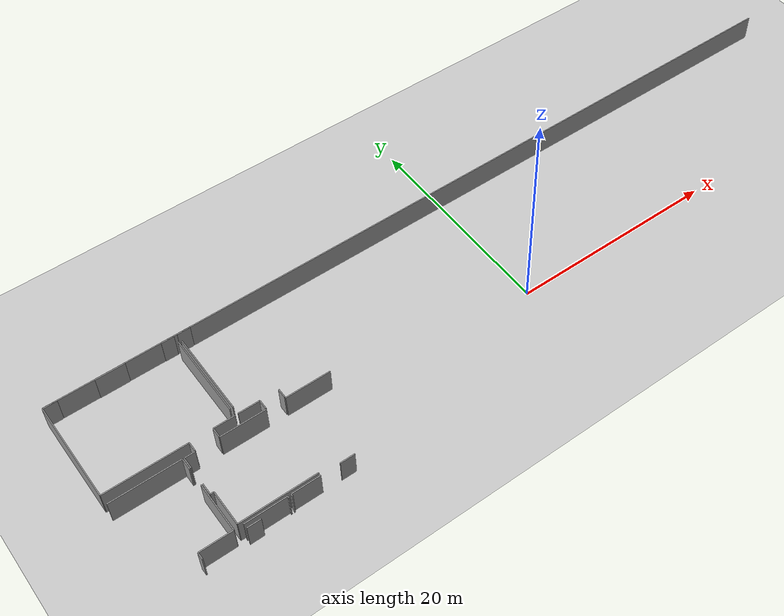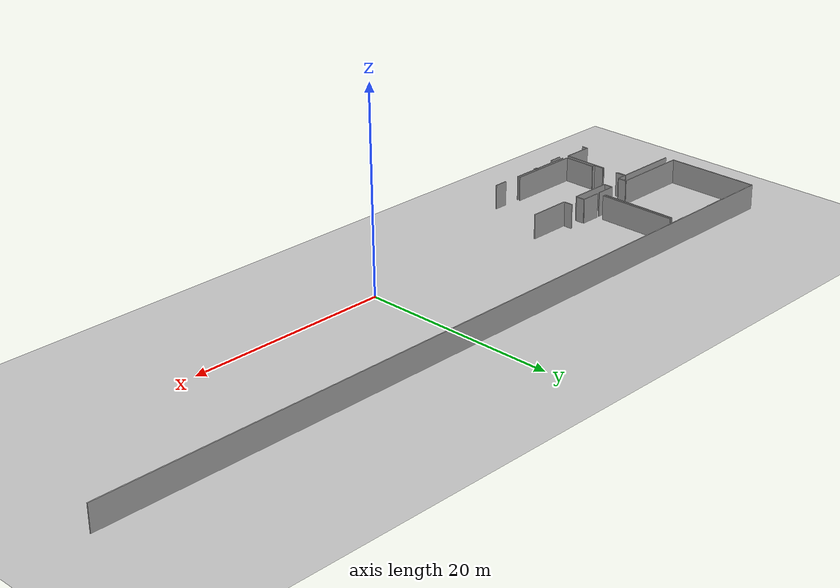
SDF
<sdf version="1.6">
 <world name="default">
  <model name="ground_plane">
   <static>1</static>
   <link name="link">
    <collision name="collision">
     <geometry><plane><normal>0 0 1</normal><size>100 100</size></plane></geometry>
     <surface><friction><ode><mu>100</mu><mu2>50</mu2></ode></friction></surface>
    </collision>
    <visual name="visual">
     <cast_shadows>0</cast_shadows>
     <geometry><plane><normal>0 0 1</normal><size>100 100</size></plane></geometry>
     <material>
      <script><uri>file://media/materials/scripts/gazebo.material</uri><name>Gazebo/Grey</name></script>
     </material>
    </visual>
   </link>
  </model>
  <model name="50052753">
   <static>1</static>
   <link name="Wall_0">
    <collision name="Wall_0_Collision">
     <geometry><box><size>7.63324305639 0.1 2.5</size></box></geometry>
     <pose>3.8166215282 0 1.25 0 0 0</pose>
    </collision>
    <visual name="Wall_0_Visual">
     <pose>3.8166215282 0 1.25 0 0 0</pose>
     <geometry><box><size>7.63324305639 0.1 2.5</size></box></geometry>
     <material>
      <script><uri>file://media/materials/scripts/gazebo.material</uri><name>Gazebo/Grey</name></script>
      <ambient>1 1 1 1</ambient>
     </material>
    </visual>
    <pose>0.0230872176731 -9.6408161712 0 0 0 0.0</pose>
   </link>
   <link name="Wall_1">
    <collision name="Wall_1_Collision">
     <geometry><box><size>0.879851328466 0.1 2.5</size></box></geometry>
     <pose>0.439925664233 0 1.25 0 0 0</pose>
    </collision>
    <visual name="Wall_1_Visual">
     <pose>0.439925664233 0 1.25 0 0 0</pose>
     <geometry><box><size>0.879851328466 0.1 2.5</size></box></geometry>
     <material>
      <script><uri>file://media/materials/scripts/gazebo.material</uri><name>Gazebo/Grey</name></script>
      <ambient>1 1 1 1</ambient>
     </material>
    </visual>
    <pose>7.65633027407 -9.6408161712 0 0 0 -1.57079632679</pose>
   </link>
   <link name="Wall_2">
    <collision name="Wall_2_Collision">
     <geometry><box><size>0.892536612902 0.1 2.5</size></box></geometry>
     <pose>0.446268306451 0 1.25 0 0 0</pose>
    </collision>
    <visual name="Wall_2_Visual">
     <pose>0.446268306451 0 1.25 0 0 0</pose>
     <geometry><box><size>0.892536612902 0.1 2.5</size></box></geometry>
     <material>
      <script><uri>file://media/materials/scripts/gazebo.material</uri><name>Gazebo/Grey</name></script>
      <ambient>1 1 1 1</ambient>
     </material>
    </visual>
    <pose>9.79075623323 -10.5206674997 0 0 0 1.57079632679</pose>
   </link>
   <link name="Wall_3">
    <collision name="Wall_3_Collision">
     <geometry><box><size>1.97040523141 0.1 2.5</size></box></geometry>
     <pose>0.985202615706 0 1.25 0 0 0</pose>
    </collision>
    <visual name="Wall_3_Visual">
     <pose>0.985202615706 0 1.25 0 0 0</pose>
     <geometry><box><size>1.97040523141 0.1 2.5</size></box></geometry>
     <material>
      <script><uri>file://media/materials/scripts/gazebo.material</uri><name>Gazebo/Grey</name></script>
      <ambient>1 1 1 1</ambient>
     </material>
    </visual>
    <pose>9.79075623323 -9.62813088676 0 0 0 0.0</pose>
   </link>
   <link name="Wall_4">
    <collision name="Wall_4_Collision">
     <geometry><box><size>8.11249310238 0.1 2.5</size></box></geometry>
     <pose>4.05624655119 0 1.25 0 0 0</pose>
    </collision>
    <visual name="Wall_4_Visual">
     <pose>4.05624655119 0 1.25 0 0 0</pose>
     <geometry><box><size>8.11249310238 0.1 2.5</size></box></geometry>
     <material>
      <script><uri>file://media/materials/scripts/gazebo.material</uri><name>Gazebo/Grey</name></script>
      <ambient>1 1 1 1</ambient>
     </material>
    </visual>
    <pose>11.7611614646 -8.87576666688 0 0 0 1.57079632679</pose>
   </link>
   <link name="Wall_5">
    <collision name="Wall_5_Collision">
     <geometry><box><size>1.19863252634 0.1 2.5</size></box></geometry>
     <pose>0.599316263169 0 1.25 0 0 0</pose>
    </collision>
    <visual name="Wall_5_Visual">
     <pose>0.599316263169 0 1.25 0 0 0</pose>
     <geometry><box><size>1.19863252634 0.1 2.5</size></box></geometry>
     <material>
      <script><uri>file://media/materials/scripts/gazebo.material</uri><name>Gazebo/Grey</name></script>
      <ambient>1 1 1 1</ambient>
     </material>
    </visual>
    <pose>11.7611614646 -0.0282881842918 0 0 0 3.14159265359</pose>
   </link>
   <link name="Wall_6">
    <collision name="Wall_6_Collision">
     <geometry><box><size>2.71465086926 0.1 2.5</size></box></geometry>
     <pose>1.35732543463 0 1.25 0 0 0</pose>
    </collision>
    <visual name="Wall_6_Visual">
     <pose>1.35732543463 0 1.25 0 0 0</pose>
     <geometry><box><size>2.71465086926 0.1 2.5</size></box></geometry>
     <material>
      <script><uri>file://media/materials/scripts/gazebo.material</uri><name>Gazebo/Grey</name></script>
      <ambient>1 1 1 1</ambient>
     </material>
    </visual>
    <pose>7.27742082797 -0.0282881842918 0 0 0 3.14159265359</pose>
   </link>
   <link name="Wall_7">
    <collision name="Wall_7_Collision">
     <geometry><box><size>1.27778870122 0.1 2.5</size></box></geometry>
     <pose>0.638894350609 0 1.25 0 0 0</pose>
    </collision>
    <visual name="Wall_7_Visual">
     <pose>0.638894350609 0 1.25 0 0 0</pose>
     <geometry><box><size>1.27778870122 0.1 2.5</size></box></geometry>
     <material>
      <script><uri>file://media/materials/scripts/gazebo.material</uri><name>Gazebo/Grey</name></script>
      <ambient>1 1 1 1</ambient>
     </material>
    </visual>
    <pose>1.27778870122 -0.0282881842918 0 0 0 3.14159265359</pose>
   </link>
   <link name="Wall_8">
    <collision name="Wall_8_Collision">
     <geometry><box><size>9.61255571213 0.1 2.5</size></box></geometry>
     <pose>4.80627785606 0 1.25 0 0 0</pose>
    </collision>
    <visual name="Wall_8_Visual">
     <pose>4.80627785606 0 1.25 0 0 0</pose>
     <geometry><box><size>9.61255571213 0.1 2.5</size></box></geometry>
     <material>
      <script><uri>file://media/materials/scripts/gazebo.material</uri><name>Gazebo/Grey</name></script>
      <ambient>1 1 1 1</ambient>
     </material>
    </visual>
    <pose>0.0 -0.0282881842918 0 0 0 -1.56839454723</pose>
   </link>
   <link name="Wall_10">
    <collision name="Wall_10_Collision">
     <geometry><box><size>6.44716896165 0.1 2.5</size></box></geometry>
     <pose>3.22358448082 0 1.25 0 0 0</pose>
    </collision>
    <visual name="Wall_10_Visual">
     <pose>3.22358448082 0 1.25 0 0 0</pose>
     <geometry><box><size>6.44716896165 0.1 2.5</size></box></geometry>
     <material>
      <script><uri>file://media/materials/scripts/gazebo.material</uri><name>Gazebo/Grey</name></script>
      <ambient>1 1 1 1</ambient>
     </material>
    </visual>
    <pose>0.0715450042179 -10.5854893031 0 0 0 0.0</pose>
   </link>
   <link name="Wall_11">
    <collision name="Wall_11_Collision">
     <geometry><box><size>1.07342876896 0.1 2.5</size></box></geometry>
     <pose>0.536714384478 0 1.25 0 0 0</pose>
    </collision>
    <visual name="Wall_11_Visual">
     <pose>0.536714384478 0 1.25 0 0 0</pose>
     <geometry><box><size>1.07342876896 0.1 2.5</size></box></geometry>
     <material>
      <script><uri>file://media/materials/scripts/gazebo.material</uri><name>Gazebo/Grey</name></script>
      <ambient>1 1 1 1</ambient>
     </material>
    </visual>
    <pose>6.51871396586 -10.5854893031 0 0 0 -1.57079632679</pose>
   </link>
   <link name="Wall_12">
    <collision name="Wall_12_Collision">
     <geometry><box><size>4.72006748571 0.1 2.5</size></box></geometry>
     <pose>2.36003374286 0 1.25 0 0 0</pose>
    </collision>
    <visual name="Wall_12_Visual">
     <pose>2.36003374286 0 1.25 0 0 0</pose>
     <geometry><box><size>4.72006748571 0.1 2.5</size></box></geometry>
     <material>
      <script><uri>file://media/materials/scripts/gazebo.material</uri><name>Gazebo/Grey</name></script>
      <ambient>1 1 1 1</ambient>
     </material>
    </visual>
    <pose>6.51871396586 -13.3877954878 0 0 0 -1.57079632679</pose>
   </link>
   <link name="Wall_13">
    <collision name="Wall_13_Collision">
     <geometry><box><size>3.02290328105 0.1 2.5</size></box></geometry>
     <pose>1.51145164052 0 1.25 0 0 0</pose>
    </collision>
    <visual name="Wall_13_Visual">
     <pose>1.51145164052 0 1.25 0 0 0</pose>
     <geometry><box><size>3.02290328105 0.1 2.5</size></box></geometry>
     <material>
      <script><uri>file://media/materials/scripts/gazebo.material</uri><name>Gazebo/Grey</name></script>
      <ambient>1 1 1 1</ambient>
     </material>
    </visual>
    <pose>6.51871396586 -18.1078629736 0 0 0 3.14159265359</pose>
   </link>
   <link name="Wall_14">
    <collision name="Wall_14_Collision">
     <geometry><box><size>0.642636509517 0.1 2.5</size></box></geometry>
     <pose>0.321318254759 0 1.25 0 0 0</pose>
    </collision>
    <visual name="Wall_14_Visual">
     <pose>0.321318254759 0 1.25 0 0 0</pose>
     <geometry><box><size>0.642636509517 0.1 2.5</size></box></geometry>
     <material>
      <script><uri>file://media/materials/scripts/gazebo.material</uri><name>Gazebo/Grey</name></script>
      <ambient>1 1 1 1</ambient>
     </material>
    </visual>
    <pose>3.49581068482 -18.1078629736 0 0 0 -1.57079632679</pose>
   </link>
   <link name="Wall_18">
    <collision name="Wall_18_Collision">
     <geometry><box><size>3.34739285692 0.1 2.5</size></box></geometry>
     <pose>1.67369642846 0 1.25 0 0 0</pose>
    </collision>
    <visual name="Wall_18_Visual">
     <pose>1.67369642846 0 1.25 0 0 0</pose>
     <geometry><box><size>3.34739285692 0.1 2.5</size></box></geometry>
     <material>
      <script><uri>file://media/materials/scripts/gazebo.material</uri><name>Gazebo/Grey</name></script>
      <ambient>1 1 1 1</ambient>
     </material>
    </visual>
    <pose>6.98350278759 -17.8350025053 0 0 0 1.57079632679</pose>
   </link>
   <link name="Wall_19">
    <collision name="Wall_19_Collision">
     <geometry><box><size>0.334130392039 0.1 2.5</size></box></geometry>
     <pose>0.167065196019 0 1.25 0 0 0</pose>
    </collision>
    <visual name="Wall_19_Visual">
     <pose>0.167065196019 0 1.25 0 0 0</pose>
     <geometry><box><size>0.334130392039 0.1 2.5</size></box></geometry>
     <material>
      <script><uri>file://media/materials/scripts/gazebo.material</uri><name>Gazebo/Grey</name></script>
      <ambient>1 1 1 1</ambient>
     </material>
    </visual>
    <pose>6.98350278759 -14.4876096484 0 0 0 3.14159265359</pose>
   </link>
   <link name="Wall_20">
    <collision name="Wall_20_Collision">
     <geometry><box><size>1.08078623393 0.1 2.5</size></box></geometry>
     <pose>0.540393116965 0 1.25 0 0 0</pose>
    </collision>
    <visual name="Wall_20_Visual">
     <pose>0.540393116965 0 1.25 0 0 0</pose>
     <geometry><box><size>1.08078623393 0.1 2.5</size></box></geometry>
     <material>
      <script><uri>file://media/materials/scripts/gazebo.material</uri><name>Gazebo/Grey</name></script>
      <ambient>1 1 1 1</ambient>
     </material>
    </visual>
    <pose>6.64937239555 -14.4876096484 0 0 0 1.57079632679</pose>
   </link>
   <link name="Wall_21">
    <collision name="Wall_21_Collision">
     <geometry><box><size>1.06987688931 0.1 2.5</size></box></geometry>
     <pose>0.534938444657 0 1.25 0 0 0</pose>
    </collision>
    <visual name="Wall_21_Visual">
     <pose>0.534938444657 0 1.25 0 0 0</pose>
     <geometry><box><size>1.06987688931 0.1 2.5</size></box></geometry>
     <material>
      <script><uri>file://media/materials/scripts/gazebo.material</uri><name>Gazebo/Grey</name></script>
      <ambient>1 1 1 1</ambient>
     </material>
    </visual>
    <pose>6.64937239555 -11.6717302094 0 0 0 1.57079632679</pose>
   </link>
   <link name="Wall_22">
    <collision name="Wall_22_Collision">
     <geometry><box><size>0.979050252754 0.1 2.5</size></box></geometry>
     <pose>0.489525126377 0 1.25 0 0 0</pose>
    </collision>
    <visual name="Wall_22_Visual">
     <pose>0.489525126377 0 1.25 0 0 0</pose>
     <geometry><box><size>0.979050252754 0.1 2.5</size></box></geometry>
     <material>
      <script><uri>file://media/materials/scripts/gazebo.material</uri><name>Gazebo/Grey</name></script>
      <ambient>1 1 1 1</ambient>
     </material>
    </visual>
    <pose>6.64937239555 -10.6018533201 0 0 0 0.0</pose>
   </link>
   <link name="Wall_23">
    <collision name="Wall_23_Collision">
     <geometry><box><size>4.25794257372 0.1 2.5</size></box></geometry>
     <pose>2.12897128686 0 1.25 0 0 0</pose>
    </collision>
    <visual name="Wall_23_Visual">
     <pose>2.12897128686 0 1.25 0 0 0</pose>
     <geometry><box><size>4.25794257372 0.1 2.5</size></box></geometry>
     <material>
      <script><uri>file://media/materials/scripts/gazebo.material</uri><name>Gazebo/Grey</name></script>
      <ambient>1 1 1 1</ambient>
     </material>
    </visual>
    <pose>9.77604130329 -10.6018533201 0 0 0 0.0</pose>
   </link>
   <link name="Wall_24">
    <collision name="Wall_24_Collision">
     <geometry><box><size>4.2458915535 0.1 2.5</size></box></geometry>
     <pose>2.12294577675 0 1.25 0 0 0</pose>
    </collision>
    <visual name="Wall_24_Visual">
     <pose>2.12294577675 0 1.25 0 0 0</pose>
     <geometry><box><size>4.2458915535 0.1 2.5</size></box></geometry>
     <material>
      <script><uri>file://media/materials/scripts/gazebo.material</uri><name>Gazebo/Grey</name></script>
      <ambient>1 1 1 1</ambient>
     </material>
    </visual>
    <pose>15.8043421729 -10.6018533201 0 0 0 0.0</pose>
   </link>
   <link name="Wall_30">
    <collision name="Wall_30_Collision">
     <geometry><box><size>7.18811840003 0.1 2.5</size></box></geometry>
     <pose>3.59405920001 0 1.25 0 0 0</pose>
    </collision>
    <visual name="Wall_30_Visual">
     <pose>3.59405920001 0 1.25 0 0 0</pose>
     <geometry><box><size>7.18811840003 0.1 2.5</size></box></geometry>
     <material>
      <script><uri>file://media/materials/scripts/gazebo.material</uri><name>Gazebo/Grey</name></script>
      <ambient>1 1 1 1</ambient>
     </material>
    </visual>
    <pose>14.1716192131 -17.8296746859 0 0 0 -3.14085145545</pose>
   </link>
   <link name="Wall_31">
    <collision name="Wall_31_Collision">
     <geometry><box><size>8.12213391855 0.1 2.5</size></box></geometry>
     <pose>4.06106695927 0 1.25 0 0 0</pose>
    </collision>
    <visual name="Wall_31_Visual">
     <pose>4.06106695927 0 1.25 0 0 0</pose>
     <geometry><box><size>8.12213391855 0.1 2.5</size></box></geometry>
     <material>
      <script><uri>file://media/materials/scripts/gazebo.material</uri><name>Gazebo/Grey</name></script>
      <ambient>1 1 1 1</ambient>
     </material>
    </visual>
    <pose>12.0432821905 -8.89086215536 0 0 0 1.57079632679</pose>
   </link>
   <link name="Wall_32">
    <collision name="Wall_32_Collision">
     <geometry><box><size>1.22844294476 0.1 2.5</size></box></geometry>
     <pose>0.614221472381 0 1.25 0 0 0</pose>
    </collision>
    <visual name="Wall_32_Visual">
     <pose>0.614221472381 0 1.25 0 0 0</pose>
     <geometry><box><size>1.22844294476 0.1 2.5</size></box></geometry>
     <material>
      <script><uri>file://media/materials/scripts/gazebo.material</uri><name>Gazebo/Grey</name></script>
      <ambient>1 1 1 1</ambient>
     </material>
    </visual>
    <pose>12.0432821905 -0.0228335119844 0 0 0 0.0</pose>
   </link>
   <link name="Wall_36">
    <collision name="Wall_36_Collision">
     <geometry><box><size>0.894058847035 0.1 2.5</size></box></geometry>
     <pose>0.447029423517 0 1.25 0 0 0</pose>
    </collision>
    <visual name="Wall_36_Visual">
     <pose>0.447029423517 0 1.25 0 0 0</pose>
     <geometry><box><size>0.894058847035 0.1 2.5</size></box></geometry>
     <material>
      <script><uri>file://media/materials/scripts/gazebo.material</uri><name>Gazebo/Grey</name></script>
      <ambient>1 1 1 1</ambient>
     </material>
    </visual>
    <pose>15.8043421729 -9.61988545188 0 0 0 -1.57079632679</pose>
   </link>
   <link name="Wall_37">
    <collision name="Wall_37_Collision">
     <geometry><box><size>0.900274636408 0.1 2.5</size></box></geometry>
     <pose>0.450137318204 0 1.25 0 0 0</pose>
    </collision>
    <visual name="Wall_37_Visual">
     <pose>0.450137318204 0 1.25 0 0 0</pose>
     <geometry><box><size>0.900274636408 0.1 2.5</size></box></geometry>
     <material>
      <script><uri>file://media/materials/scripts/gazebo.material</uri><name>Gazebo/Grey</name></script>
      <ambient>1 1 1 1</ambient>
     </material>
    </visual>
    <pose>14.0447663688 -10.5139442989 0 0 0 1.57079632679</pose>
   </link>
   <link name="Wall_38">
    <collision name="Wall_38_Collision">
     <geometry><box><size>2.00148910268 0.1 2.5</size></box></geometry>
     <pose>1.00074455134 0 1.25 0 0 0</pose>
    </collision>
    <visual name="Wall_38_Visual">
     <pose>1.00074455134 0 1.25 0 0 0</pose>
     <geometry><box><size>2.00148910268 0.1 2.5</size></box></geometry>
     <material>
      <script><uri>file://media/materials/scripts/gazebo.material</uri><name>Gazebo/Grey</name></script>
      <ambient>1 1 1 1</ambient>
     </material>
    </visual>
    <pose>14.0447663688 -9.61366966251 0 0 0 3.13937437861</pose>
   </link>
   <link name="Wall_54">
    <collision name="Wall_54_Collision">
     <geometry><box><size>0.20550160786 0.1 2.5</size></box></geometry>
     <pose>0.10275080393 0 1.25 0 0 0</pose>
    </collision>
    <visual name="Wall_54_Visual">
     <pose>0.10275080393 0 1.25 0 0 0</pose>
     <geometry><box><size>0.20550160786 0.1 2.5</size></box></geometry>
     <material>
      <script><uri>file://media/materials/scripts/gazebo.material</uri><name>Gazebo/Grey</name></script>
      <ambient>1 1 1 1</ambient>
     </material>
    </visual>
    <pose>11.4942630801 -18.3148868155 0 0 0 1.57079632679</pose>
   </link>
   <link name="Wall_55">
    <collision name="Wall_55_Collision">
     <geometry><box><size>2.66479770143 0.1 2.5</size></box></geometry>
     <pose>1.33239885071 0 1.25 0 0 0</pose>
    </collision>
    <visual name="Wall_55_Visual">
     <pose>1.33239885071 0 1.25 0 0 0</pose>
     <geometry><box><size>2.66479770143 0.1 2.5</size></box></geometry>
     <material>
      <script><uri>file://media/materials/scripts/gazebo.material</uri><name>Gazebo/Grey</name></script>
      <ambient>1 1 1 1</ambient>
     </material>
    </visual>
    <pose>11.4942630801 -18.1093852077 0 0 0 0.0</pose>
   </link>
   <link name="Wall_56">
    <collision name="Wall_56_Collision">
     <geometry><box><size>1.36392178254 0.1 2.5</size></box></geometry>
     <pose>0.681960891268 0 1.25 0 0 0</pose>
    </collision>
    <visual name="Wall_56_Visual">
     <pose>0.681960891268 0 1.25 0 0 0</pose>
     <geometry><box><size>1.36392178254 0.1 2.5</size></box></geometry>
     <material>
      <script><uri>file://media/materials/scripts/gazebo.material</uri><name>Gazebo/Grey</name></script>
      <ambient>1 1 1 1</ambient>
     </material>
    </visual>
    <pose>15.9164800873 -18.1093852077 0 0 0 0.0</pose>
   </link>
   <link name="Wall_93">
    <collision name="Wall_93_Collision">
     <geometry><box><size>1.28768322308 0.1 2.5</size></box></geometry>
     <pose>0.643841611539 0 1.25 0 0 0</pose>
    </collision>
    <visual name="Wall_93_Visual">
     <pose>0.643841611539 0 1.25 0 0 0</pose>
     <geometry><box><size>1.28768322308 0.1 2.5</size></box></geometry>
     <material>
      <script><uri>file://media/materials/scripts/gazebo.material</uri><name>Gazebo/Grey</name></script>
      <ambient>1 1 1 1</ambient>
     </material>
    </visual>
    <pose>8.62497859358 -18.5304097981 0 0 0 3.14159265359</pose>
   </link>
   <link name="Wall_95">
    <collision name="Wall_95_Collision">
     <geometry><box><size>3.86761637163 0.1 2.5</size></box></geometry>
     <pose>1.93380818581 0 1.25 0 0 0</pose>
    </collision>
    <visual name="Wall_95_Visual">
     <pose>1.93380818581 0 1.25 0 0 0</pose>
     <geometry><box><size>3.86761637163 0.1 2.5</size></box></geometry>
     <material>
      <script><uri>file://media/materials/scripts/gazebo.material</uri><name>Gazebo/Grey</name></script>
      <ambient>1 1 1 1</ambient>
     </material>
    </visual>
    <pose>7.33729537051 -18.1154741442 0 0 0 0.0</pose>
   </link>
   <link name="Wall_96">
    <collision name="Wall_96_Collision">
     <geometry><box><size>0.200300641241 0.1 2.5</size></box></geometry>
     <pose>0.100150320621 0 1.25 0 0 0</pose>
    </collision>
    <visual name="Wall_96_Visual">
     <pose>0.100150320621 0 1.25 0 0 0</pose>
     <geometry><box><size>0.200300641241 0.1 2.5</size></box></geometry>
     <material>
      <script><uri>file://media/materials/scripts/gazebo.material</uri><name>Gazebo/Grey</name></script>
      <ambient>1 1 1 1</ambient>
     </material>
    </visual>
    <pose>11.2049117421 -18.1154741442 0 0 0 -1.57079632679</pose>
   </link>
   <link name="Wall_271">
    <collision name="Wall_271_Collision">
     <geometry><box><size>78.0982221574 0.1 2.5</size></box></geometry>
     <pose>39.0491110787 0 1.25 0 0 0</pose>
    </collision>
    <visual name="Wall_271_Visual">
     <pose>39.0491110787 0 1.25 0 0 0</pose>
     <geometry><box><size>78.0982221574 0.1 2.5</size></box></geometry>
     <material>
      <script><uri>file://media/materials/scripts/gazebo.material</uri><name>Gazebo/Grey</name></script>
      <ambient>1 1 1 1</ambient>
     </material>
    </visual>
   </link>
   <pose>-39.0 12.5312175336 0 0 0 0</pose>
  </model>
 </world>
</sdf>
